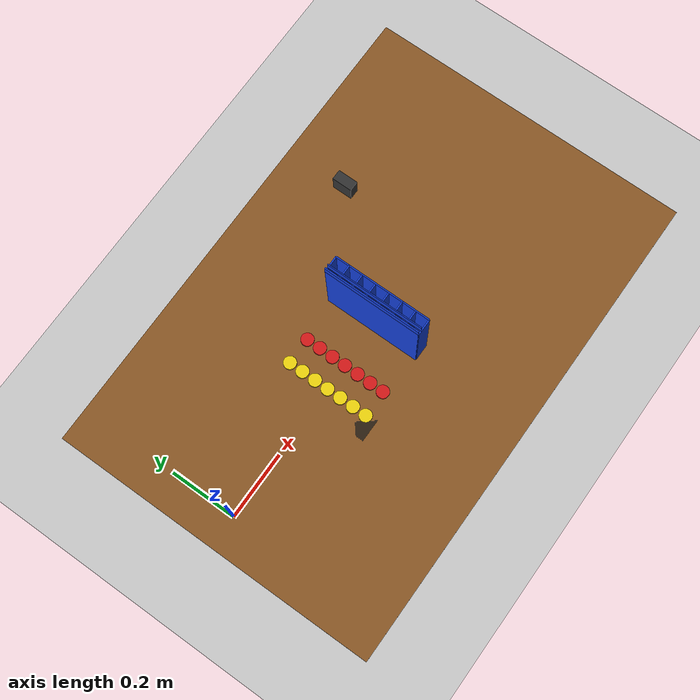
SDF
<?xml version="1.0"?>
<sdf version="1.6">
  <world name="connect_four">

    <!-- ── Physics ── -->
    <physics name="4ms" type="ignored">
      <max_step_size>0.004</max_step_size>
      <real_time_factor>1.0</real_time_factor>
    </physics>

    <!-- ── Required Gazebo system plugins (same set as empty.sdf) ── -->
    <plugin filename="gz-sim-physics-system"
            name="gz::sim::systems::Physics"/>
    <plugin filename="gz-sim-user-commands-system"
            name="gz::sim::systems::UserCommands"/>
    <plugin filename="gz-sim-scene-broadcaster-system"
            name="gz::sim::systems::SceneBroadcaster"/>
    <plugin filename="gz-sim-contact-system"
            name="gz::sim::systems::Contact"/>
    <!-- Sensors system: required for camera rendering (uses ogre2 via Xvfb) -->
    <plugin filename="gz-sim-sensors-system"
            name="gz::sim::systems::Sensors">
      <render_engine>ogre2</render_engine>
    </plugin>

    <!-- ── Lighting ── -->
    <light type="directional" name="sun">
      <cast_shadows>true</cast_shadows>
      <pose>0 0 10 0 0 0</pose>
      <diffuse>0.8 0.8 0.8 1</diffuse>
      <specular>0.2 0.2 0.2 1</specular>
      <attenuation>
        <range>1000</range>
        <constant>0.9</constant>
        <linear>0.01</linear>
        <quadratic>0.001</quadratic>
      </attenuation>
      <direction>-0.5 0.1 -0.9</direction>
    </light>

    <!-- ── Ground plane (physics collision surface) ── -->
    <model name="ground_plane">
      <static>true</static>
      <link name="link">
        <collision name="collision">
          <geometry>
            <plane><normal>0 0 1</normal><size>100 100</size></plane>
          </geometry>
        </collision>
        <visual name="visual">
          <geometry>
            <plane><normal>0 0 1</normal><size>100 100</size></plane>
          </geometry>
          <material>
            <ambient>0.8 0.8 0.8 1</ambient>
            <diffuse>0.8 0.8 0.8 1</diffuse>
            <specular>0.8 0.8 0.8 1</specular>
          </material>
        </visual>
      </link>
    </model>

    <!-- ── Table (wooden surface under arm and board) ── -->
    <model name="table">
      <static>true</static>
      <!-- center at (0.65, 0, -0.05): top surface flush with z=0 -->
      <pose>0.65 0.0 -0.05 0 0 0</pose>
      <link name="table_link">
        <collision name="collision">
          <geometry><box><size>1.5 1.0 0.1</size></box></geometry>
        </collision>
        <visual name="visual">
          <geometry><box><size>1.5 1.0 0.1</size></box></geometry>
          <material>
            <ambient>0.55 0.35 0.15 1</ambient>
            <diffuse>0.55 0.35 0.15 1</diffuse>
            <specular>0.1 0.1 0.1 1</specular>
          </material>
        </visual>
      </link>
    </model>

    <!-- ── Connect Four board (slotted: 8 column dividers + back plate) ── -->
    <model name="connect_four_board">
      <static>true</static>
      <pose>0.65 0.0 0.0 0 0 0</pose>

      <link name="wall_0">
        <pose>0.0 0.1459 0.127 0 0 0</pose>
        <collision name="col"><geometry><box><size>0.048 0.004 0.254</size></box></geometry></collision>
        <visual name="vis"><geometry><box><size>0.048 0.004 0.254</size></box></geometry>
          <material><ambient>0.08 0.25 0.85 1</ambient><diffuse>0.08 0.25 0.85 1</diffuse><specular>0.3 0.3 0.3 1</specular></material>
        </visual>
      </link>

      <link name="wall_1">
        <pose>0.0 0.1042 0.127 0 0 0</pose>
        <collision name="col"><geometry><box><size>0.048 0.004 0.254</size></box></geometry></collision>
        <visual name="vis"><geometry><box><size>0.048 0.004 0.254</size></box></geometry>
          <material><ambient>0.08 0.25 0.85 1</ambient><diffuse>0.08 0.25 0.85 1</diffuse><specular>0.3 0.3 0.3 1</specular></material>
        </visual>
      </link>

      <link name="wall_2">
        <pose>0.0 0.0625 0.127 0 0 0</pose>
        <collision name="col"><geometry><box><size>0.048 0.004 0.254</size></box></geometry></collision>
        <visual name="vis"><geometry><box><size>0.048 0.004 0.254</size></box></geometry>
          <material><ambient>0.08 0.25 0.85 1</ambient><diffuse>0.08 0.25 0.85 1</diffuse><specular>0.3 0.3 0.3 1</specular></material>
        </visual>
      </link>

      <link name="wall_3">
        <pose>0.0 0.0208 0.127 0 0 0</pose>
        <collision name="col"><geometry><box><size>0.048 0.004 0.254</size></box></geometry></collision>
        <visual name="vis"><geometry><box><size>0.048 0.004 0.254</size></box></geometry>
          <material><ambient>0.08 0.25 0.85 1</ambient><diffuse>0.08 0.25 0.85 1</diffuse><specular>0.3 0.3 0.3 1</specular></material>
        </visual>
      </link>

      <link name="wall_4">
        <pose>0.0 -0.0208 0.127 0 0 0</pose>
        <collision name="col"><geometry><box><size>0.048 0.004 0.254</size></box></geometry></collision>
        <visual name="vis"><geometry><box><size>0.048 0.004 0.254</size></box></geometry>
          <material><ambient>0.08 0.25 0.85 1</ambient><diffuse>0.08 0.25 0.85 1</diffuse><specular>0.3 0.3 0.3 1</specular></material>
        </visual>
      </link>

      <link name="wall_5">
        <pose>0.0 -0.0625 0.127 0 0 0</pose>
        <collision name="col"><geometry><box><size>0.048 0.004 0.254</size></box></geometry></collision>
        <visual name="vis"><geometry><box><size>0.048 0.004 0.254</size></box></geometry>
          <material><ambient>0.08 0.25 0.85 1</ambient><diffuse>0.08 0.25 0.85 1</diffuse><specular>0.3 0.3 0.3 1</specular></material>
        </visual>
      </link>

      <link name="wall_6">
        <pose>0.0 -0.1042 0.127 0 0 0</pose>
        <collision name="col"><geometry><box><size>0.048 0.004 0.254</size></box></geometry></collision>
        <visual name="vis"><geometry><box><size>0.048 0.004 0.254</size></box></geometry>
          <material><ambient>0.08 0.25 0.85 1</ambient><diffuse>0.08 0.25 0.85 1</diffuse><specular>0.3 0.3 0.3 1</specular></material>
        </visual>
      </link>

      <link name="wall_7">
        <pose>0.0 -0.1459 0.127 0 0 0</pose>
        <collision name="col"><geometry><box><size>0.048 0.004 0.254</size></box></geometry></collision>
        <visual name="vis"><geometry><box><size>0.048 0.004 0.254</size></box></geometry>
          <material><ambient>0.08 0.25 0.85 1</ambient><diffuse>0.08 0.25 0.85 1</diffuse><specular>0.3 0.3 0.3 1</specular></material>
        </visual>
      </link>

      <!-- Back plate: closes the rear of all 7 slots -->
      <link name="back_plate">
        <pose>0.024 0.0 0.127 0 0 0</pose>
        <collision name="col"><geometry><box><size>0.004 0.292 0.254</size></box></geometry></collision>
        <visual name="vis"><geometry><box><size>0.004 0.292 0.254</size></box></geometry>
          <material><ambient>0.08 0.25 0.85 1</ambient><diffuse>0.08 0.25 0.85 1</diffuse><specular>0.3 0.3 0.3 1</specular></material>
        </visual>
      </link>

      <!-- Front plate: closes the front of all 7 slots (pieces enter from top, held inside) -->
      <link name="front_plate">
        <pose>-0.024 0.0 0.127 0 0 0</pose>
        <collision name="col"><geometry><box><size>0.004 0.292 0.254</size></box></geometry></collision>
        <visual name="vis"><geometry><box><size>0.004 0.292 0.254</size></box></geometry>
          <material><ambient>0.08 0.25 0.85 1</ambient><diffuse>0.08 0.25 0.85 1</diffuse><specular>0.3 0.3 0.3 1</specular></material>
        </visual>
      </link>

      <link name="slot_front_rail">
        <pose>-0.024 0.0 0.2665 0 0 0</pose>
        <collision name="col"><geometry><box><size>0.004 0.292 0.025</size></box></geometry></collision>
        <visual name="vis"><geometry><box><size>0.004 0.292 0.025</size></box></geometry>
          <material><ambient>0.08 0.25 0.85 1</ambient><diffuse>0.08 0.25 0.85 1</diffuse><specular>0.3 0.3 0.3 1</specular></material>
        </visual>
      </link>

      <link name="slot_inner_rail">
        <pose>-0.0115 0.0 0.2665 0 0 0</pose>
        <collision name="col"><geometry><box><size>0.003 0.292 0.025</size></box></geometry></collision>
        <visual name="vis"><geometry><box><size>0.003 0.292 0.025</size></box></geometry>
          <material><ambient>0.08 0.25 0.85 1</ambient><diffuse>0.08 0.25 0.85 1</diffuse><specular>0.3 0.3 0.3 1</specular></material>
        </visual>
      </link>
    </model>

    <!-- ── Overhead RGBD camera (Phase 3B.4) ── -->
    <model name="overhead_camera_mount">
      <static>true</static>
      <pose>0.55 0.0 1.2 0 1.5708 0</pose>
      <link name="overhead_camera_link">
        <visual name="vis">
          <geometry><box><size>0.04 0.04 0.02</size></box></geometry>
          <material><ambient>0.2 0.2 0.2 1</ambient><diffuse>0.2 0.2 0.2 1</diffuse></material>
        </visual>
        <sensor name="overhead_camera" type="rgbd_camera">
          <update_rate>1</update_rate>
          <camera>
            <horizontal_fov>1.047</horizontal_fov>
            <image>
              <width>640</width>
              <height>480</height>
              <format>R8G8B8</format>
            </image>
            <clip><near>0.1</near><far>10.0</far></clip>
          </camera>
          <topic>/overhead_camera</topic>
          <gz_frame_id>overhead_camera_link</gz_frame_id>
        </sensor>
      </link>
    </model>

    <!-- ── Supply tray (thin static slab, pieces rest here) ── -->
    <model name="supply_tray">
      <static>true</static>
      <pose>0.46 0.0 -0.0025 0 0 0</pose>
      <link name="tray_link">
        <collision name="collision">
          <geometry><box><size>0.20 0.32 0.005</size></box></geometry>
        </collision>
        <visual name="visual">
          <geometry><box><size>0.20 0.32 0.005</size></box></geometry>
          <material>
            <ambient>0.4 0.4 0.4 1</ambient>
            <diffuse>0.4 0.4 0.4 1</diffuse>
            <specular>0.1 0.1 0.1 1</specular>
          </material>
        </visual>
      </link>
    </model>

    <model name="red_piece_0">
      <pose>0.50 -0.126 0.0035 0 0 0</pose>
      <link name="link">
        <inertial>
          <mass>0.010</mass>
          <inertia><ixx>9.04e-6</ixx><iyy>9.04e-6</iyy><izz>1.81e-6</izz>
                   <ixy>0</ixy><ixz>0</ixz><iyz>0</iyz></inertia>
        </inertial>
        <collision name="collision">
          <geometry><cylinder><radius>0.019</radius><length>0.007</length></cylinder></geometry>
          <surface><friction><ode><mu>2.0</mu><mu2>2.0</mu2></ode></friction></surface>
        </collision>
        <visual name="visual">
          <geometry><cylinder><radius>0.019</radius><length>0.007</length></cylinder></geometry>
          <material><ambient>0.85 0.1 0.1 1</ambient><diffuse>0.85 0.1 0.1 1</diffuse></material>
        </visual>
      </link>
    </model>

    <model name="red_piece_1">
      <pose>0.50 -0.084 0.0035 0 0 0</pose>
      <link name="link">
        <inertial>
          <mass>0.010</mass>
          <inertia><ixx>9.04e-6</ixx><iyy>9.04e-6</iyy><izz>1.81e-6</izz>
                   <ixy>0</ixy><ixz>0</ixz><iyz>0</iyz></inertia>
        </inertial>
        <collision name="collision">
          <geometry><cylinder><radius>0.019</radius><length>0.007</length></cylinder></geometry>
          <surface><friction><ode><mu>2.0</mu><mu2>2.0</mu2></ode></friction></surface>
        </collision>
        <visual name="visual">
          <geometry><cylinder><radius>0.019</radius><length>0.007</length></cylinder></geometry>
          <material><ambient>0.85 0.1 0.1 1</ambient><diffuse>0.85 0.1 0.1 1</diffuse></material>
        </visual>
      </link>
    </model>

    <model name="red_piece_2">
      <pose>0.50 -0.042 0.0035 0 0 0</pose>
      <link name="link">
        <inertial>
          <mass>0.010</mass>
          <inertia><ixx>9.04e-6</ixx><iyy>9.04e-6</iyy><izz>1.81e-6</izz>
                   <ixy>0</ixy><ixz>0</ixz><iyz>0</iyz></inertia>
        </inertial>
        <collision name="collision">
          <geometry><cylinder><radius>0.019</radius><length>0.007</length></cylinder></geometry>
          <surface><friction><ode><mu>2.0</mu><mu2>2.0</mu2></ode></friction></surface>
        </collision>
        <visual name="visual">
          <geometry><cylinder><radius>0.019</radius><length>0.007</length></cylinder></geometry>
          <material><ambient>0.85 0.1 0.1 1</ambient><diffuse>0.85 0.1 0.1 1</diffuse></material>
        </visual>
      </link>
    </model>

    <model name="red_piece_3">
      <pose>0.50 0.000 0.0035 0 0 0</pose>
      <link name="link">
        <inertial>
          <mass>0.010</mass>
          <inertia><ixx>9.04e-6</ixx><iyy>9.04e-6</iyy><izz>1.81e-6</izz>
                   <ixy>0</ixy><ixz>0</ixz><iyz>0</iyz></inertia>
        </inertial>
        <collision name="collision">
          <geometry><cylinder><radius>0.019</radius><length>0.007</length></cylinder></geometry>
          <surface><friction><ode><mu>2.0</mu><mu2>2.0</mu2></ode></friction></surface>
        </collision>
        <visual name="visual">
          <geometry><cylinder><radius>0.019</radius><length>0.007</length></cylinder></geometry>
          <material><ambient>0.85 0.1 0.1 1</ambient><diffuse>0.85 0.1 0.1 1</diffuse></material>
        </visual>
      </link>
    </model>

    <model name="red_piece_4">
      <pose>0.50 0.042 0.0035 0 0 0</pose>
      <link name="link">
        <inertial>
          <mass>0.010</mass>
          <inertia><ixx>9.04e-6</ixx><iyy>9.04e-6</iyy><izz>1.81e-6</izz>
                   <ixy>0</ixy><ixz>0</ixz><iyz>0</iyz></inertia>
        </inertial>
        <collision name="collision">
          <geometry><cylinder><radius>0.019</radius><length>0.007</length></cylinder></geometry>
          <surface><friction><ode><mu>2.0</mu><mu2>2.0</mu2></ode></friction></surface>
        </collision>
        <visual name="visual">
          <geometry><cylinder><radius>0.019</radius><length>0.007</length></cylinder></geometry>
          <material><ambient>0.85 0.1 0.1 1</ambient><diffuse>0.85 0.1 0.1 1</diffuse></material>
        </visual>
      </link>
    </model>

    <model name="red_piece_5">
      <pose>0.50 0.084 0.0035 0 0 0</pose>
      <link name="link">
        <inertial>
          <mass>0.010</mass>
          <inertia><ixx>9.04e-6</ixx><iyy>9.04e-6</iyy><izz>1.81e-6</izz>
                   <ixy>0</ixy><ixz>0</ixz><iyz>0</iyz></inertia>
        </inertial>
        <collision name="collision">
          <geometry><cylinder><radius>0.019</radius><length>0.007</length></cylinder></geometry>
          <surface><friction><ode><mu>2.0</mu><mu2>2.0</mu2></ode></friction></surface>
        </collision>
        <visual name="visual">
          <geometry><cylinder><radius>0.019</radius><length>0.007</length></cylinder></geometry>
          <material><ambient>0.85 0.1 0.1 1</ambient><diffuse>0.85 0.1 0.1 1</diffuse></material>
        </visual>
      </link>
    </model>

    <model name="red_piece_6">
      <pose>0.50 0.126 0.0035 0 0 0</pose>
      <link name="link">
        <inertial>
          <mass>0.010</mass>
          <inertia><ixx>9.04e-6</ixx><iyy>9.04e-6</iyy><izz>1.81e-6</izz>
                   <ixy>0</ixy><ixz>0</ixz><iyz>0</iyz></inertia>
        </inertial>
        <collision name="collision">
          <geometry><cylinder><radius>0.019</radius><length>0.007</length></cylinder></geometry>
          <surface><friction><ode><mu>2.0</mu><mu2>2.0</mu2></ode></friction></surface>
        </collision>
        <visual name="visual">
          <geometry><cylinder><radius>0.019</radius><length>0.007</length></cylinder></geometry>
          <material><ambient>0.85 0.1 0.1 1</ambient><diffuse>0.85 0.1 0.1 1</diffuse></material>
        </visual>
      </link>
    </model>

    <model name="yellow_piece_0">
      <pose>0.42 -0.126 0.0035 0 0 0</pose>
      <link name="link">
        <inertial>
          <mass>0.010</mass>
          <inertia><ixx>9.04e-6</ixx><iyy>9.04e-6</iyy><izz>1.81e-6</izz>
                   <ixy>0</ixy><ixz>0</ixz><iyz>0</iyz></inertia>
        </inertial>
        <collision name="collision">
          <geometry><cylinder><radius>0.019</radius><length>0.007</length></cylinder></geometry>
          <surface><friction><ode><mu>2.0</mu><mu2>2.0</mu2></ode></friction></surface>
        </collision>
        <visual name="visual">
          <geometry><cylinder><radius>0.019</radius><length>0.007</length></cylinder></geometry>
          <material><ambient>0.95 0.85 0.05 1</ambient><diffuse>0.95 0.85 0.05 1</diffuse></material>
        </visual>
      </link>
    </model>

    <model name="yellow_piece_1">
      <pose>0.42 -0.084 0.0035 0 0 0</pose>
      <link name="link">
        <inertial>
          <mass>0.010</mass>
          <inertia><ixx>9.04e-6</ixx><iyy>9.04e-6</iyy><izz>1.81e-6</izz>
                   <ixy>0</ixy><ixz>0</ixz><iyz>0</iyz></inertia>
        </inertial>
        <collision name="collision">
          <geometry><cylinder><radius>0.019</radius><length>0.007</length></cylinder></geometry>
          <surface><friction><ode><mu>2.0</mu><mu2>2.0</mu2></ode></friction></surface>
        </collision>
        <visual name="visual">
          <geometry><cylinder><radius>0.019</radius><length>0.007</length></cylinder></geometry>
          <material><ambient>0.95 0.85 0.05 1</ambient><diffuse>0.95 0.85 0.05 1</diffuse></material>
        </visual>
      </link>
    </model>

    <model name="yellow_piece_2">
      <pose>0.42 -0.042 0.0035 0 0 0</pose>
      <link name="link">
        <inertial>
          <mass>0.010</mass>
          <inertia><ixx>9.04e-6</ixx><iyy>9.04e-6</iyy><izz>1.81e-6</izz>
                   <ixy>0</ixy><ixz>0</ixz><iyz>0</iyz></inertia>
        </inertial>
        <collision name="collision">
          <geometry><cylinder><radius>0.019</radius><length>0.007</length></cylinder></geometry>
          <surface><friction><ode><mu>2.0</mu><mu2>2.0</mu2></ode></friction></surface>
        </collision>
        <visual name="visual">
          <geometry><cylinder><radius>0.019</radius><length>0.007</length></cylinder></geometry>
          <material><ambient>0.95 0.85 0.05 1</ambient><diffuse>0.95 0.85 0.05 1</diffuse></material>
        </visual>
      </link>
    </model>

    <model name="yellow_piece_3">
      <pose>0.42 0.000 0.0035 0 0 0</pose>
      <link name="link">
        <inertial>
          <mass>0.010</mass>
          <inertia><ixx>9.04e-6</ixx><iyy>9.04e-6</iyy><izz>1.81e-6</izz>
                   <ixy>0</ixy><ixz>0</ixz><iyz>0</iyz></inertia>
        </inertial>
        <collision name="collision">
          <geometry><cylinder><radius>0.019</radius><length>0.007</length></cylinder></geometry>
          <surface><friction><ode><mu>2.0</mu><mu2>2.0</mu2></ode></friction></surface>
        </collision>
        <visual name="visual">
          <geometry><cylinder><radius>0.019</radius><length>0.007</length></cylinder></geometry>
          <material><ambient>0.95 0.85 0.05 1</ambient><diffuse>0.95 0.85 0.05 1</diffuse></material>
        </visual>
      </link>
    </model>

    <model name="yellow_piece_4">
      <pose>0.42 0.042 0.0035 0 0 0</pose>
      <link name="link">
        <inertial>
          <mass>0.010</mass>
          <inertia><ixx>9.04e-6</ixx><iyy>9.04e-6</iyy><izz>1.81e-6</izz>
                   <ixy>0</ixy><ixz>0</ixz><iyz>0</iyz></inertia>
        </inertial>
        <collision name="collision">
          <geometry><cylinder><radius>0.019</radius><length>0.007</length></cylinder></geometry>
          <surface><friction><ode><mu>2.0</mu><mu2>2.0</mu2></ode></friction></surface>
        </collision>
        <visual name="visual">
          <geometry><cylinder><radius>0.019</radius><length>0.007</length></cylinder></geometry>
          <material><ambient>0.95 0.85 0.05 1</ambient><diffuse>0.95 0.85 0.05 1</diffuse></material>
        </visual>
      </link>
    </model>

    <model name="yellow_piece_5">
      <pose>0.42 0.084 0.0035 0 0 0</pose>
      <link name="link">
        <inertial>
          <mass>0.010</mass>
          <inertia><ixx>9.04e-6</ixx><iyy>9.04e-6</iyy><izz>1.81e-6</izz>
                   <ixy>0</ixy><ixz>0</ixz><iyz>0</iyz></inertia>
        </inertial>
        <collision name="collision">
          <geometry><cylinder><radius>0.019</radius><length>0.007</length></cylinder></geometry>
          <surface><friction><ode><mu>2.0</mu><mu2>2.0</mu2></ode></friction></surface>
        </collision>
        <visual name="visual">
          <geometry><cylinder><radius>0.019</radius><length>0.007</length></cylinder></geometry>
          <material><ambient>0.95 0.85 0.05 1</ambient><diffuse>0.95 0.85 0.05 1</diffuse></material>
        </visual>
      </link>
    </model>

    <model name="yellow_piece_6">
      <pose>0.42 0.126 0.0035 0 0 0</pose>
      <link name="link">
        <inertial>
          <mass>0.010</mass>
          <inertia><ixx>9.04e-6</ixx><iyy>9.04e-6</iyy><izz>1.81e-6</izz>
                   <ixy>0</ixy><ixz>0</ixz><iyz>0</iyz></inertia>
        </inertial>
        <collision name="collision">
          <geometry><cylinder><radius>0.019</radius><length>0.007</length></cylinder></geometry>
          <surface><friction><ode><mu>2.0</mu><mu2>2.0</mu2></ode></friction></surface>
        </collision>
        <visual name="visual">
          <geometry><cylinder><radius>0.019</radius><length>0.007</length></cylinder></geometry>
          <material><ambient>0.95 0.85 0.05 1</ambient><diffuse>0.95 0.85 0.05 1</diffuse></material>
        </visual>
      </link>
    </model>

  </world>
</sdf>
